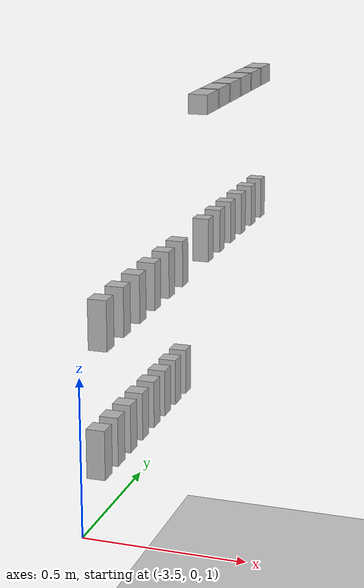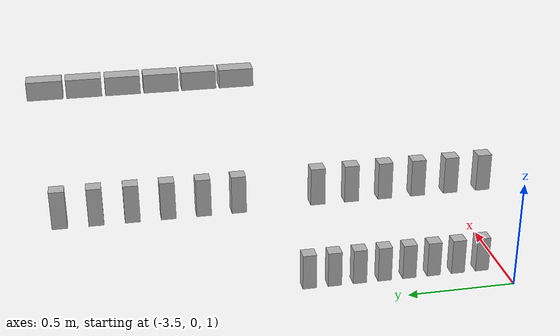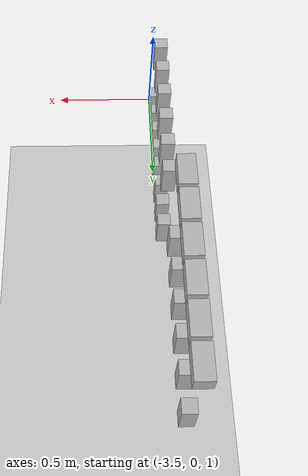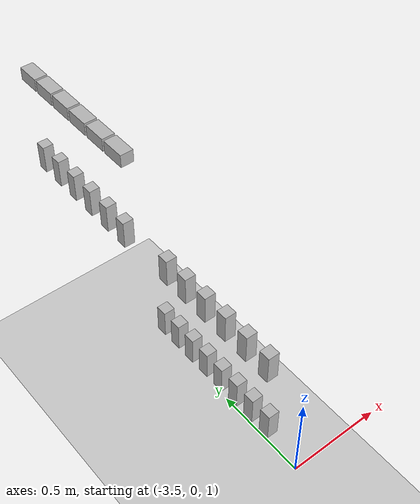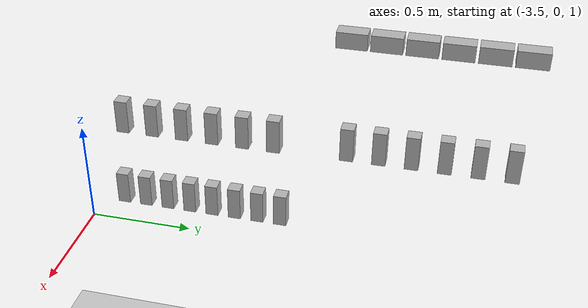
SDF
<sdf version="1.7">
 <world name="default">
  <model name="ground_plane">
   <static>1</static>
   <link name="link">
    <collision name="collision">
     <geometry><plane><normal>0 0 1</normal><size>100 100</size></plane></geometry>
     <surface>
      <contact><collide_bitmask>65535</collide_bitmask></contact>
      <friction><ode><mu>100</mu><mu2>50</mu2></ode></friction>
     </surface>
    </collision>
    <visual name="visual">
     <cast_shadows>0</cast_shadows>
     <geometry><plane><normal>0 0 1</normal><size>100 100</size></plane></geometry>
     <material>
      <script><uri>file://media/materials/scripts/gazebo.material</uri><name>Gazebo/Grey</name></script>
     </material>
    </visual>
   </link>
  </model>
  <model name="AH_shelf_filled_0">
   <static>1</static>
   <model name="board4">
    <pose>0 0.5 1.2 0 -0 0</pose>
    <static>0</static>
    <link name="AH_hagelslag_puur::link_0">
     <inertial>
      <mass>0.1</mass>
      <inertia><ixx>0.0014</ixx><ixy>0</ixy><ixz>0</ixz><iyy>0.0014</iyy><iyz>0</iyz><izz>0.0028</izz></inertia>
     </inertial>
     <pose>0.111111 0 0 0 -0 1.57</pose>
     <visual name="visual">
      <geometry>
       <mesh><uri>model://AH_hagelslag_puur/AH_hagelslag_puur/AH_hagelslag_puur.dae</uri><scale>1 1 1</scale></mesh>
      </geometry>
     </visual>
     <collision name="collision">
      <geometry>
       <mesh><uri>model://AH_hagelslag_puur/AH_hagelslag_puur/AH_hagelslag_puur.dae</uri><scale>1 1 1</scale></mesh>
      </geometry>
      <surface>
       <friction>
        <ode><mu>1</mu><mu2>1</mu2><fdir1>0 0 0</fdir1><slip1>0</slip1><slip2>0</slip2></ode>
        <torsional>
         <coefficient>1</coefficient>
         <patch_radius>0</patch_radius>
         <surface_radius>0</surface_radius>
         <use_patch_radius>1</use_patch_radius>
         <ode><slip>0</slip></ode>
        </torsional>
       </friction>
       <bounce><restitution_coefficient>0</restitution_coefficient><threshold>1e+06</threshold></bounce>
       <contact>
        <collide_without_contact>0</collide_without_contact>
        <collide_without_contact_bitmask>1</collide_without_contact_bitmask>
        <collide_bitmask>1</collide_bitmask>
        <ode>
         <soft_cfm>0</soft_cfm>
         <soft_erp>0.2</soft_erp>
         <kp>1e+13</kp>
         <kd>1</kd>
         <max_vel>0.01</max_vel>
         <min_depth>0</min_depth>
        </ode>
        <bullet>
         <split_impulse>1</split_impulse>
         <split_impulse_penetration_threshold>-0.01</split_impulse_penetration_threshold>
         <soft_cfm>0</soft_cfm>
         <soft_erp>0.2</soft_erp>
         <kp>1e+13</kp>
         <kd>1</kd>
        </bullet>
       </contact>
      </surface>
     </collision>
    </link>
    <static>0</static>
    <link name="AH_hagelslag_puur::link_0">
     <inertial>
      <mass>0.1</mass>
      <inertia><ixx>0.0014</ixx><ixy>0</ixy><ixz>0</ixz><iyy>0.0014</iyy><iyz>0</iyz><izz>0.0028</izz></inertia>
     </inertial>
     <pose>0.222222 0 0 0 -0 1.57</pose>
     <visual name="visual">
      <geometry>
       <mesh><uri>model://AH_hagelslag_puur/AH_hagelslag_puur/AH_hagelslag_puur.dae</uri><scale>1 1 1</scale></mesh>
      </geometry>
     </visual>
     <collision name="collision">
      <geometry>
       <mesh><uri>model://AH_hagelslag_puur/AH_hagelslag_puur/AH_hagelslag_puur.dae</uri><scale>1 1 1</scale></mesh>
      </geometry>
      <surface>
       <friction>
        <ode><mu>1</mu><mu2>1</mu2><fdir1>0 0 0</fdir1><slip1>0</slip1><slip2>0</slip2></ode>
        <torsional>
         <coefficient>1</coefficient>
         <patch_radius>0</patch_radius>
         <surface_radius>0</surface_radius>
         <use_patch_radius>1</use_patch_radius>
         <ode><slip>0</slip></ode>
        </torsional>
       </friction>
       <bounce><restitution_coefficient>0</restitution_coefficient><threshold>1e+06</threshold></bounce>
       <contact>
        <collide_without_contact>0</collide_without_contact>
        <collide_without_contact_bitmask>1</collide_without_contact_bitmask>
        <collide_bitmask>1</collide_bitmask>
        <ode>
         <soft_cfm>0</soft_cfm>
         <soft_erp>0.2</soft_erp>
         <kp>1e+13</kp>
         <kd>1</kd>
         <max_vel>0.01</max_vel>
         <min_depth>0</min_depth>
        </ode>
        <bullet>
         <split_impulse>1</split_impulse>
         <split_impulse_penetration_threshold>-0.01</split_impulse_penetration_threshold>
         <soft_cfm>0</soft_cfm>
         <soft_erp>0.2</soft_erp>
         <kp>1e+13</kp>
         <kd>1</kd>
        </bullet>
       </contact>
      </surface>
     </collision>
    </link>
    <static>0</static>
    <link name="AH_hagelslag_puur::link_0">
     <inertial>
      <mass>0.1</mass>
      <inertia><ixx>0.0014</ixx><ixy>0</ixy><ixz>0</ixz><iyy>0.0014</iyy><iyz>0</iyz><izz>0.0028</izz></inertia>
     </inertial>
     <pose>0.333333 0 0 0 -0 1.57</pose>
     <visual name="visual">
      <geometry>
       <mesh><uri>model://AH_hagelslag_puur/AH_hagelslag_puur/AH_hagelslag_puur.dae</uri><scale>1 1 1</scale></mesh>
      </geometry>
     </visual>
     <collision name="collision">
      <geometry>
       <mesh><uri>model://AH_hagelslag_puur/AH_hagelslag_puur/AH_hagelslag_puur.dae</uri><scale>1 1 1</scale></mesh>
      </geometry>
      <surface>
       <friction>
        <ode><mu>1</mu><mu2>1</mu2><fdir1>0 0 0</fdir1><slip1>0</slip1><slip2>0</slip2></ode>
        <torsional>
         <coefficient>1</coefficient>
         <patch_radius>0</patch_radius>
         <surface_radius>0</surface_radius>
         <use_patch_radius>1</use_patch_radius>
         <ode><slip>0</slip></ode>
        </torsional>
       </friction>
       <bounce><restitution_coefficient>0</restitution_coefficient><threshold>1e+06</threshold></bounce>
       <contact>
        <collide_without_contact>0</collide_without_contact>
        <collide_without_contact_bitmask>1</collide_without_contact_bitmask>
        <collide_bitmask>1</collide_bitmask>
        <ode>
         <soft_cfm>0</soft_cfm>
         <soft_erp>0.2</soft_erp>
         <kp>1e+13</kp>
         <kd>1</kd>
         <max_vel>0.01</max_vel>
         <min_depth>0</min_depth>
        </ode>
        <bullet>
         <split_impulse>1</split_impulse>
         <split_impulse_penetration_threshold>-0.01</split_impulse_penetration_threshold>
         <soft_cfm>0</soft_cfm>
         <soft_erp>0.2</soft_erp>
         <kp>1e+13</kp>
         <kd>1</kd>
        </bullet>
       </contact>
      </surface>
     </collision>
    </link>
    <static>0</static>
    <link name="AH_hagelslag_puur::link_0">
     <inertial>
      <mass>0.1</mass>
      <inertia><ixx>0.0014</ixx><ixy>0</ixy><ixz>0</ixz><iyy>0.0014</iyy><iyz>0</iyz><izz>0.0028</izz></inertia>
     </inertial>
     <pose>0.444444 0 0 0 -0 1.57</pose>
     <visual name="visual">
      <geometry>
       <mesh><uri>model://AH_hagelslag_puur/AH_hagelslag_puur/AH_hagelslag_puur.dae</uri><scale>1 1 1</scale></mesh>
      </geometry>
     </visual>
     <collision name="collision">
      <geometry>
       <mesh><uri>model://AH_hagelslag_puur/AH_hagelslag_puur/AH_hagelslag_puur.dae</uri><scale>1 1 1</scale></mesh>
      </geometry>
      <surface>
       <friction>
        <ode><mu>1</mu><mu2>1</mu2><fdir1>0 0 0</fdir1><slip1>0</slip1><slip2>0</slip2></ode>
        <torsional>
         <coefficient>1</coefficient>
         <patch_radius>0</patch_radius>
         <surface_radius>0</surface_radius>
         <use_patch_radius>1</use_patch_radius>
         <ode><slip>0</slip></ode>
        </torsional>
       </friction>
       <bounce><restitution_coefficient>0</restitution_coefficient><threshold>1e+06</threshold></bounce>
       <contact>
        <collide_without_contact>0</collide_without_contact>
        <collide_without_contact_bitmask>1</collide_without_contact_bitmask>
        <collide_bitmask>1</collide_bitmask>
        <ode>
         <soft_cfm>0</soft_cfm>
         <soft_erp>0.2</soft_erp>
         <kp>1e+13</kp>
         <kd>1</kd>
         <max_vel>0.01</max_vel>
         <min_depth>0</min_depth>
        </ode>
        <bullet>
         <split_impulse>1</split_impulse>
         <split_impulse_penetration_threshold>-0.01</split_impulse_penetration_threshold>
         <soft_cfm>0</soft_cfm>
         <soft_erp>0.2</soft_erp>
         <kp>1e+13</kp>
         <kd>1</kd>
        </bullet>
       </contact>
      </surface>
     </collision>
    </link>
    <static>0</static>
    <link name="AH_hagelslag_puur::link_0">
     <inertial>
      <mass>0.1</mass>
      <inertia><ixx>0.0014</ixx><ixy>0</ixy><ixz>0</ixz><iyy>0.0014</iyy><iyz>0</iyz><izz>0.0028</izz></inertia>
     </inertial>
     <pose>0.555556 0 0 0 -0 1.57</pose>
     <visual name="visual">
      <geometry>
       <mesh><uri>model://AH_hagelslag_puur/AH_hagelslag_puur/AH_hagelslag_puur.dae</uri><scale>1 1 1</scale></mesh>
      </geometry>
     </visual>
     <collision name="collision">
      <geometry>
       <mesh><uri>model://AH_hagelslag_puur/AH_hagelslag_puur/AH_hagelslag_puur.dae</uri><scale>1 1 1</scale></mesh>
      </geometry>
      <surface>
       <friction>
        <ode><mu>1</mu><mu2>1</mu2><fdir1>0 0 0</fdir1><slip1>0</slip1><slip2>0</slip2></ode>
        <torsional>
         <coefficient>1</coefficient>
         <patch_radius>0</patch_radius>
         <surface_radius>0</surface_radius>
         <use_patch_radius>1</use_patch_radius>
         <ode><slip>0</slip></ode>
        </torsional>
       </friction>
       <bounce><restitution_coefficient>0</restitution_coefficient><threshold>1e+06</threshold></bounce>
       <contact>
        <collide_without_contact>0</collide_without_contact>
        <collide_without_contact_bitmask>1</collide_without_contact_bitmask>
        <collide_bitmask>1</collide_bitmask>
        <ode>
         <soft_cfm>0</soft_cfm>
         <soft_erp>0.2</soft_erp>
         <kp>1e+13</kp>
         <kd>1</kd>
         <max_vel>0.01</max_vel>
         <min_depth>0</min_depth>
        </ode>
        <bullet>
         <split_impulse>1</split_impulse>
         <split_impulse_penetration_threshold>-0.01</split_impulse_penetration_threshold>
         <soft_cfm>0</soft_cfm>
         <soft_erp>0.2</soft_erp>
         <kp>1e+13</kp>
         <kd>1</kd>
        </bullet>
       </contact>
      </surface>
     </collision>
    </link>
    <static>0</static>
    <link name="AH_hagelslag_puur::link_0">
     <inertial>
      <mass>0.1</mass>
      <inertia><ixx>0.0014</ixx><ixy>0</ixy><ixz>0</ixz><iyy>0.0014</iyy><iyz>0</iyz><izz>0.0028</izz></inertia>
     </inertial>
     <pose>0.666667 0 0 0 -0 1.57</pose>
     <visual name="visual">
      <geometry>
       <mesh><uri>model://AH_hagelslag_puur/AH_hagelslag_puur/AH_hagelslag_puur.dae</uri><scale>1 1 1</scale></mesh>
      </geometry>
     </visual>
     <collision name="collision">
      <geometry>
       <mesh><uri>model://AH_hagelslag_puur/AH_hagelslag_puur/AH_hagelslag_puur.dae</uri><scale>1 1 1</scale></mesh>
      </geometry>
      <surface>
       <friction>
        <ode><mu>1</mu><mu2>1</mu2><fdir1>0 0 0</fdir1><slip1>0</slip1><slip2>0</slip2></ode>
        <torsional>
         <coefficient>1</coefficient>
         <patch_radius>0</patch_radius>
         <surface_radius>0</surface_radius>
         <use_patch_radius>1</use_patch_radius>
         <ode><slip>0</slip></ode>
        </torsional>
       </friction>
       <bounce><restitution_coefficient>0</restitution_coefficient><threshold>1e+06</threshold></bounce>
       <contact>
        <collide_without_contact>0</collide_without_contact>
        <collide_without_contact_bitmask>1</collide_without_contact_bitmask>
        <collide_bitmask>1</collide_bitmask>
        <ode>
         <soft_cfm>0</soft_cfm>
         <soft_erp>0.2</soft_erp>
         <kp>1e+13</kp>
         <kd>1</kd>
         <max_vel>0.01</max_vel>
         <min_depth>0</min_depth>
        </ode>
        <bullet>
         <split_impulse>1</split_impulse>
         <split_impulse_penetration_threshold>-0.01</split_impulse_penetration_threshold>
         <soft_cfm>0</soft_cfm>
         <soft_erp>0.2</soft_erp>
         <kp>1e+13</kp>
         <kd>1</kd>
        </bullet>
       </contact>
      </surface>
     </collision>
    </link>
    <static>0</static>
    <link name="AH_hagelslag_puur::link_0">
     <inertial>
      <mass>0.1</mass>
      <inertia><ixx>0.0014</ixx><ixy>0</ixy><ixz>0</ixz><iyy>0.0014</iyy><iyz>0</iyz><izz>0.0028</izz></inertia>
     </inertial>
     <pose>0.777778 0 0 0 -0 1.57</pose>
     <visual name="visual">
      <geometry>
       <mesh><uri>model://AH_hagelslag_puur/AH_hagelslag_puur/AH_hagelslag_puur.dae</uri><scale>1 1 1</scale></mesh>
      </geometry>
     </visual>
     <collision name="collision">
      <geometry>
       <mesh><uri>model://AH_hagelslag_puur/AH_hagelslag_puur/AH_hagelslag_puur.dae</uri><scale>1 1 1</scale></mesh>
      </geometry>
      <surface>
       <friction>
        <ode><mu>1</mu><mu2>1</mu2><fdir1>0 0 0</fdir1><slip1>0</slip1><slip2>0</slip2></ode>
        <torsional>
         <coefficient>1</coefficient>
         <patch_radius>0</patch_radius>
         <surface_radius>0</surface_radius>
         <use_patch_radius>1</use_patch_radius>
         <ode><slip>0</slip></ode>
        </torsional>
       </friction>
       <bounce><restitution_coefficient>0</restitution_coefficient><threshold>1e+06</threshold></bounce>
       <contact>
        <collide_without_contact>0</collide_without_contact>
        <collide_without_contact_bitmask>1</collide_without_contact_bitmask>
        <collide_bitmask>1</collide_bitmask>
        <ode>
         <soft_cfm>0</soft_cfm>
         <soft_erp>0.2</soft_erp>
         <kp>1e+13</kp>
         <kd>1</kd>
         <max_vel>0.01</max_vel>
         <min_depth>0</min_depth>
        </ode>
        <bullet>
         <split_impulse>1</split_impulse>
         <split_impulse_penetration_threshold>-0.01</split_impulse_penetration_threshold>
         <soft_cfm>0</soft_cfm>
         <soft_erp>0.2</soft_erp>
         <kp>1e+13</kp>
         <kd>1</kd>
        </bullet>
       </contact>
      </surface>
     </collision>
    </link>
    <static>0</static>
    <link name="AH_hagelslag_puur::link_0">
     <inertial>
      <mass>0.1</mass>
      <inertia><ixx>0.0014</ixx><ixy>0</ixy><ixz>0</ixz><iyy>0.0014</iyy><iyz>0</iyz><izz>0.0028</izz></inertia>
     </inertial>
     <pose>0.888889 0 0 0 -0 1.57</pose>
     <visual name="visual">
      <geometry>
       <mesh><uri>model://AH_hagelslag_puur/AH_hagelslag_puur/AH_hagelslag_puur.dae</uri><scale>1 1 1</scale></mesh>
      </geometry>
     </visual>
     <collision name="collision">
      <geometry>
       <mesh><uri>model://AH_hagelslag_puur/AH_hagelslag_puur/AH_hagelslag_puur.dae</uri><scale>1 1 1</scale></mesh>
      </geometry>
      <surface>
       <friction>
        <ode><mu>1</mu><mu2>1</mu2><fdir1>0 0 0</fdir1><slip1>0</slip1><slip2>0</slip2></ode>
        <torsional>
         <coefficient>1</coefficient>
         <patch_radius>0</patch_radius>
         <surface_radius>0</surface_radius>
         <use_patch_radius>1</use_patch_radius>
         <ode><slip>0</slip></ode>
        </torsional>
       </friction>
       <bounce><restitution_coefficient>0</restitution_coefficient><threshold>1e+06</threshold></bounce>
       <contact>
        <collide_without_contact>0</collide_without_contact>
        <collide_without_contact_bitmask>1</collide_without_contact_bitmask>
        <collide_bitmask>1</collide_bitmask>
        <ode>
         <soft_cfm>0</soft_cfm>
         <soft_erp>0.2</soft_erp>
         <kp>1e+13</kp>
         <kd>1</kd>
         <max_vel>0.01</max_vel>
         <min_depth>0</min_depth>
        </ode>
        <bullet>
         <split_impulse>1</split_impulse>
         <split_impulse_penetration_threshold>-0.01</split_impulse_penetration_threshold>
         <soft_cfm>0</soft_cfm>
         <soft_erp>0.2</soft_erp>
         <kp>1e+13</kp>
         <kd>1</kd>
        </bullet>
       </contact>
      </surface>
     </collision>
    </link>
   </model>
   <model name="board5">
    <pose>0 0.5 1.6 0 -0 0</pose>
    <static>0</static>
    <link name="AH_hagelslag_melk::link_0">
     <inertial>
      <mass>0.1</mass>
      <inertia><ixx>0.0014</ixx><ixy>0</ixy><ixz>0</ixz><iyy>0.0014</iyy><iyz>0</iyz><izz>0.0028</izz></inertia>
     </inertial>
     <pose>0.142857 0 0 0 -0 1.57</pose>
     <visual name="visual">
      <geometry>
       <mesh><uri>model://AH_hagelslag_melk/AH_hagelslag_melk/AH_hagelslag_melk.dae</uri><scale>1 1 1</scale></mesh>
      </geometry>
     </visual>
     <collision name="collision">
      <geometry>
       <mesh><uri>model://AH_hagelslag_melk/AH_hagelslag_melk/AH_hagelslag_melk.dae</uri><scale>1 1 1</scale></mesh>
      </geometry>
      <surface>
       <friction>
        <ode><mu>1</mu><mu2>1</mu2><fdir1>0 0 0</fdir1><slip1>0</slip1><slip2>0</slip2></ode>
        <torsional>
         <coefficient>1</coefficient>
         <patch_radius>0</patch_radius>
         <surface_radius>0</surface_radius>
         <use_patch_radius>1</use_patch_radius>
         <ode><slip>0</slip></ode>
        </torsional>
       </friction>
       <bounce><restitution_coefficient>0</restitution_coefficient><threshold>1e+06</threshold></bounce>
       <contact>
        <collide_without_contact>0</collide_without_contact>
        <collide_without_contact_bitmask>1</collide_without_contact_bitmask>
        <collide_bitmask>1</collide_bitmask>
        <ode>
         <soft_cfm>0</soft_cfm>
         <soft_erp>0.2</soft_erp>
         <kp>1e+13</kp>
         <kd>1</kd>
         <max_vel>0.01</max_vel>
         <min_depth>0</min_depth>
        </ode>
        <bullet>
         <split_impulse>1</split_impulse>
         <split_impulse_penetration_threshold>-0.01</split_impulse_penetration_threshold>
         <soft_cfm>0</soft_cfm>
         <soft_erp>0.2</soft_erp>
         <kp>1e+13</kp>
         <kd>1</kd>
        </bullet>
       </contact>
      </surface>
     </collision>
    </link>
    <static>0</static>
    <link name="AH_hagelslag_melk::link_0">
     <inertial>
      <mass>0.1</mass>
      <inertia><ixx>0.0014</ixx><ixy>0</ixy><ixz>0</ixz><iyy>0.0014</iyy><iyz>0</iyz><izz>0.0028</izz></inertia>
     </inertial>
     <pose>0.285714 0 0 0 -0 1.57</pose>
     <visual name="visual">
      <geometry>
       <mesh><uri>model://AH_hagelslag_melk/AH_hagelslag_melk/AH_hagelslag_melk.dae</uri><scale>1 1 1</scale></mesh>
      </geometry>
     </visual>
     <collision name="collision">
      <geometry>
       <mesh><uri>model://AH_hagelslag_melk/AH_hagelslag_melk/AH_hagelslag_melk.dae</uri><scale>1 1 1</scale></mesh>
      </geometry>
      <surface>
       <friction>
        <ode><mu>1</mu><mu2>1</mu2><fdir1>0 0 0</fdir1><slip1>0</slip1><slip2>0</slip2></ode>
        <torsional>
         <coefficient>1</coefficient>
         <patch_radius>0</patch_radius>
         <surface_radius>0</surface_radius>
         <use_patch_radius>1</use_patch_radius>
         <ode><slip>0</slip></ode>
        </torsional>
       </friction>
       <bounce><restitution_coefficient>0</restitution_coefficient><threshold>1e+06</threshold></bounce>
       <contact>
        <collide_without_contact>0</collide_without_contact>
        <collide_without_contact_bitmask>1</collide_without_contact_bitmask>
        <collide_bitmask>1</collide_bitmask>
        <ode>
         <soft_cfm>0</soft_cfm>
         <soft_erp>0.2</soft_erp>
         <kp>1e+13</kp>
         <kd>1</kd>
         <max_vel>0.01</max_vel>
         <min_depth>0</min_depth>
        </ode>
        <bullet>
         <split_impulse>1</split_impulse>
         <split_impulse_penetration_threshold>-0.01</split_impulse_penetration_threshold>
         <soft_cfm>0</soft_cfm>
         <soft_erp>0.2</soft_erp>
         <kp>1e+13</kp>
         <kd>1</kd>
        </bullet>
       </contact>
      </surface>
     </collision>
    </link>
    <static>0</static>
    <link name="AH_hagelslag_melk::link_0">
     <inertial>
      <mass>0.1</mass>
      <inertia><ixx>0.0014</ixx><ixy>0</ixy><ixz>0</ixz><iyy>0.0014</iyy><iyz>0</iyz><izz>0.0028</izz></inertia>
     </inertial>
     <pose>0.428571 0 0 0 -0 1.57</pose>
     <visual name="visual">
      <geometry>
       <mesh><uri>model://AH_hagelslag_melk/AH_hagelslag_melk/AH_hagelslag_melk.dae</uri><scale>1 1 1</scale></mesh>
      </geometry>
     </visual>
     <collision name="collision">
      <geometry>
       <mesh><uri>model://AH_hagelslag_melk/AH_hagelslag_melk/AH_hagelslag_melk.dae</uri><scale>1 1 1</scale></mesh>
      </geometry>
      <surface>
       <friction>
        <ode><mu>1</mu><mu2>1</mu2><fdir1>0 0 0</fdir1><slip1>0</slip1><slip2>0</slip2></ode>
        <torsional>
         <coefficient>1</coefficient>
         <patch_radius>0</patch_radius>
         <surface_radius>0</surface_radius>
         <use_patch_radius>1</use_patch_radius>
         <ode><slip>0</slip></ode>
        </torsional>
       </friction>
       <bounce><restitution_coefficient>0</restitution_coefficient><threshold>1e+06</threshold></bounce>
       <contact>
        <collide_without_contact>0</collide_without_contact>
        <collide_without_contact_bitmask>1</collide_without_contact_bitmask>
        <collide_bitmask>1</collide_bitmask>
        <ode>
         <soft_cfm>0</soft_cfm>
         <soft_erp>0.2</soft_erp>
         <kp>1e+13</kp>
         <kd>1</kd>
         <max_vel>0.01</max_vel>
         <min_depth>0</min_depth>
        </ode>
        <bullet>
         <split_impulse>1</split_impulse>
         <split_impulse_penetration_threshold>-0.01</split_impulse_penetration_threshold>
         <soft_cfm>0</soft_cfm>
         <soft_erp>0.2</soft_erp>
         <kp>1e+13</kp>
         <kd>1</kd>
        </bullet>
       </contact>
      </surface>
     </collision>
    </link>
    <static>0</static>
    <link name="AH_hagelslag_melk::link_0">
     <inertial>
      <mass>0.1</mass>
      <inertia><ixx>0.0014</ixx><ixy>0</ixy><ixz>0</ixz><iyy>0.0014</iyy><iyz>0</iyz><izz>0.0028</izz></inertia>
     </inertial>
     <pose>0.571429 0 0 0 -0 1.57</pose>
     <visual name="visual">
      <geometry>
       <mesh><uri>model://AH_hagelslag_melk/AH_hagelslag_melk/AH_hagelslag_melk.dae</uri><scale>1 1 1</scale></mesh>
      </geometry>
     </visual>
     <collision name="collision">
      <geometry>
       <mesh><uri>model://AH_hagelslag_melk/AH_hagelslag_melk/AH_hagelslag_melk.dae</uri><scale>1 1 1</scale></mesh>
      </geometry>
      <surface>
       <friction>
        <ode><mu>1</mu><mu2>1</mu2><fdir1>0 0 0</fdir1><slip1>0</slip1><slip2>0</slip2></ode>
        <torsional>
         <coefficient>1</coefficient>
         <patch_radius>0</patch_radius>
         <surface_radius>0</surface_radius>
         <use_patch_radius>1</use_patch_radius>
         <ode><slip>0</slip></ode>
        </torsional>
       </friction>
       <bounce><restitution_coefficient>0</restitution_coefficient><threshold>1e+06</threshold></bounce>
       <contact>
        <collide_without_contact>0</collide_without_contact>
        <collide_without_contact_bitmask>1</collide_without_contact_bitmask>
        <collide_bitmask>1</collide_bitmask>
        <ode>
         <soft_cfm>0</soft_cfm>
         <soft_erp>0.2</soft_erp>
         <kp>1e+13</kp>
         <kd>1</kd>
         <max_vel>0.01</max_vel>
         <min_depth>0</min_depth>
        </ode>
        <bullet>
         <split_impulse>1</split_impulse>
         <split_impulse_penetration_threshold>-0.01</split_impulse_penetration_threshold>
         <soft_cfm>0</soft_cfm>
         <soft_erp>0.2</soft_erp>
         <kp>1e+13</kp>
         <kd>1</kd>
        </bullet>
       </contact>
      </surface>
     </collision>
    </link>
    <static>0</static>
    <link name="AH_hagelslag_melk::link_0">
     <inertial>
      <mass>0.1</mass>
      <inertia><ixx>0.0014</ixx><ixy>0</ixy><ixz>0</ixz><iyy>0.0014</iyy><iyz>0</iyz><izz>0.0028</izz></inertia>
     </inertial>
     <pose>0.714286 0 0 0 -0 1.57</pose>
     <visual name="visual">
      <geometry>
       <mesh><uri>model://AH_hagelslag_melk/AH_hagelslag_melk/AH_hagelslag_melk.dae</uri><scale>1 1 1</scale></mesh>
      </geometry>
     </visual>
     <collision name="collision">
      <geometry>
       <mesh><uri>model://AH_hagelslag_melk/AH_hagelslag_melk/AH_hagelslag_melk.dae</uri><scale>1 1 1</scale></mesh>
      </geometry>
      <surface>
       <friction>
        <ode><mu>1</mu><mu2>1</mu2><fdir1>0 0 0</fdir1><slip1>0</slip1><slip2>0</slip2></ode>
        <torsional>
         <coefficient>1</coefficient>
         <patch_radius>0</patch_radius>
         <surface_radius>0</surface_radius>
         <use_patch_radius>1</use_patch_radius>
         <ode><slip>0</slip></ode>
        </torsional>
       </friction>
       <bounce><restitution_coefficient>0</restitution_coefficient><threshold>1e+06</threshold></bounce>
       <contact>
        <collide_without_contact>0</collide_without_contact>
        <collide_without_contact_bitmask>1</collide_without_contact_bitmask>
        <collide_bitmask>1</collide_bitmask>
        <ode>
         <soft_cfm>0</soft_cfm>
         <soft_erp>0.2</soft_erp>
         <kp>1e+13</kp>
         <kd>1</kd>
         <max_vel>0.01</max_vel>
         <min_depth>0</min_depth>
        </ode>
        <bullet>
         <split_impulse>1</split_impulse>
         <split_impulse_penetration_threshold>-0.01</split_impulse_penetration_threshold>
         <soft_cfm>0</soft_cfm>
         <soft_erp>0.2</soft_erp>
         <kp>1e+13</kp>
         <kd>1</kd>
        </bullet>
       </contact>
      </surface>
     </collision>
    </link>
    <static>0</static>
    <link name="AH_hagelslag_melk::link_0">
     <inertial>
      <mass>0.1</mass>
      <inertia><ixx>0.0014</ixx><ixy>0</ixy><ixz>0</ixz><iyy>0.0014</iyy><iyz>0</iyz><izz>0.0028</izz></inertia>
     </inertial>
     <pose>0.857143 0 0 0 -0 1.57</pose>
     <visual name="visual">
      <geometry>
       <mesh><uri>model://AH_hagelslag_melk/AH_hagelslag_melk/AH_hagelslag_melk.dae</uri><scale>1 1 1</scale></mesh>
      </geometry>
     </visual>
     <collision name="collision">
      <geometry>
       <mesh><uri>model://AH_hagelslag_melk/AH_hagelslag_melk/AH_hagelslag_melk.dae</uri><scale>1 1 1</scale></mesh>
      </geometry>
      <surface>
       <friction>
        <ode><mu>1</mu><mu2>1</mu2><fdir1>0 0 0</fdir1><slip1>0</slip1><slip2>0</slip2></ode>
        <torsional>
         <coefficient>1</coefficient>
         <patch_radius>0</patch_radius>
         <surface_radius>0</surface_radius>
         <use_patch_radius>1</use_patch_radius>
         <ode><slip>0</slip></ode>
        </torsional>
       </friction>
       <bounce><restitution_coefficient>0</restitution_coefficient><threshold>1e+06</threshold></bounce>
       <contact>
        <collide_without_contact>0</collide_without_contact>
        <collide_without_contact_bitmask>1</collide_without_contact_bitmask>
        <collide_bitmask>1</collide_bitmask>
        <ode>
         <soft_cfm>0</soft_cfm>
         <soft_erp>0.2</soft_erp>
         <kp>1e+13</kp>
         <kd>1</kd>
         <max_vel>0.01</max_vel>
         <min_depth>0</min_depth>
        </ode>
        <bullet>
         <split_impulse>1</split_impulse>
         <split_impulse_penetration_threshold>-0.01</split_impulse_penetration_threshold>
         <soft_cfm>0</soft_cfm>
         <soft_erp>0.2</soft_erp>
         <kp>1e+13</kp>
         <kd>1</kd>
        </bullet>
       </contact>
      </surface>
     </collision>
    </link>
   </model>
   <pose>-4.01662 1.07063 0 0 0 -1.5708</pose>
  </model>
  <model name="AH_shelf_filled_1">
   <static>1</static>
   <model name="board5">
    <pose>0 0.5 1.6 0 -0 0</pose>
    <static>0</static>
    <link name="AH_hagelslag_melk::link_0">
     <inertial>
      <mass>0.1</mass>
      <inertia><ixx>0.0014</ixx><ixy>0</ixy><ixz>0</ixz><iyy>0.0014</iyy><iyz>0</iyz><izz>0.0028</izz></inertia>
     </inertial>
     <pose>0.142857 0 0 0 -0 1.57</pose>
     <visual name="visual">
      <geometry>
       <mesh><uri>model://AH_hagelslag_melk/AH_hagelslag_melk/AH_hagelslag_melk.dae</uri><scale>1 1 1</scale></mesh>
      </geometry>
     </visual>
     <collision name="collision">
      <geometry>
       <mesh><uri>model://AH_hagelslag_melk/AH_hagelslag_melk/AH_hagelslag_melk.dae</uri><scale>1 1 1</scale></mesh>
      </geometry>
      <surface>
       <friction>
        <ode><mu>1</mu><mu2>1</mu2><fdir1>0 0 0</fdir1><slip1>0</slip1><slip2>0</slip2></ode>
        <torsional>
         <coefficient>1</coefficient>
         <patch_radius>0</patch_radius>
         <surface_radius>0</surface_radius>
         <use_patch_radius>1</use_patch_radius>
         <ode><slip>0</slip></ode>
        </torsional>
       </friction>
       <bounce><restitution_coefficient>0</restitution_coefficient><threshold>1e+06</threshold></bounce>
       <contact>
        <collide_without_contact>0</collide_without_contact>
        <collide_without_contact_bitmask>1</collide_without_contact_bitmask>
        <collide_bitmask>1</collide_bitmask>
        <ode>
         <soft_cfm>0</soft_cfm>
         <soft_erp>0.2</soft_erp>
         <kp>1e+13</kp>
         <kd>1</kd>
         <max_vel>0.01</max_vel>
         <min_depth>0</min_depth>
        </ode>
        <bullet>
         <split_impulse>1</split_impulse>
         <split_impulse_penetration_threshold>-0.01</split_impulse_penetration_threshold>
         <soft_cfm>0</soft_cfm>
         <soft_erp>0.2</soft_erp>
         <kp>1e+13</kp>
         <kd>1</kd>
        </bullet>
       </contact>
      </surface>
     </collision>
    </link>
    <static>0</static>
    <link name="AH_hagelslag_melk::link_0">
     <inertial>
      <mass>0.1</mass>
      <inertia><ixx>0.0014</ixx><ixy>0</ixy><ixz>0</ixz><iyy>0.0014</iyy><iyz>0</iyz><izz>0.0028</izz></inertia>
     </inertial>
     <pose>0.285714 0 0 0 -0 1.57</pose>
     <visual name="visual">
      <geometry>
       <mesh><uri>model://AH_hagelslag_melk/AH_hagelslag_melk/AH_hagelslag_melk.dae</uri><scale>1 1 1</scale></mesh>
      </geometry>
     </visual>
     <collision name="collision">
      <geometry>
       <mesh><uri>model://AH_hagelslag_melk/AH_hagelslag_melk/AH_hagelslag_melk.dae</uri><scale>1 1 1</scale></mesh>
      </geometry>
      <surface>
       <friction>
        <ode><mu>1</mu><mu2>1</mu2><fdir1>0 0 0</fdir1><slip1>0</slip1><slip2>0</slip2></ode>
        <torsional>
         <coefficient>1</coefficient>
         <patch_radius>0</patch_radius>
         <surface_radius>0</surface_radius>
         <use_patch_radius>1</use_patch_radius>
         <ode><slip>0</slip></ode>
        </torsional>
       </friction>
       <bounce><restitution_coefficient>0</restitution_coefficient><threshold>1e+06</threshold></bounce>
       <contact>
        <collide_without_contact>0</collide_without_contact>
        <collide_without_contact_bitmask>1</collide_without_contact_bitmask>
        <collide_bitmask>1</collide_bitmask>
        <ode>
         <soft_cfm>0</soft_cfm>
         <soft_erp>0.2</soft_erp>
         <kp>1e+13</kp>
         <kd>1</kd>
         <max_vel>0.01</max_vel>
         <min_depth>0</min_depth>
        </ode>
        <bullet>
         <split_impulse>1</split_impulse>
         <split_impulse_penetration_threshold>-0.01</split_impulse_penetration_threshold>
         <soft_cfm>0</soft_cfm>
         <soft_erp>0.2</soft_erp>
         <kp>1e+13</kp>
         <kd>1</kd>
        </bullet>
       </contact>
      </surface>
     </collision>
    </link>
    <static>0</static>
    <link name="AH_hagelslag_melk::link_0">
     <inertial>
      <mass>0.1</mass>
      <inertia><ixx>0.0014</ixx><ixy>0</ixy><ixz>0</ixz><iyy>0.0014</iyy><iyz>0</iyz><izz>0.0028</izz></inertia>
     </inertial>
     <pose>0.428571 0 0 0 -0 1.57</pose>
     <visual name="visual">
      <geometry>
       <mesh><uri>model://AH_hagelslag_melk/AH_hagelslag_melk/AH_hagelslag_melk.dae</uri><scale>1 1 1</scale></mesh>
      </geometry>
     </visual>
     <collision name="collision">
      <geometry>
       <mesh><uri>model://AH_hagelslag_melk/AH_hagelslag_melk/AH_hagelslag_melk.dae</uri><scale>1 1 1</scale></mesh>
      </geometry>
      <surface>
       <friction>
        <ode><mu>1</mu><mu2>1</mu2><fdir1>0 0 0</fdir1><slip1>0</slip1><slip2>0</slip2></ode>
        <torsional>
         <coefficient>1</coefficient>
         <patch_radius>0</patch_radius>
         <surface_radius>0</surface_radius>
         <use_patch_radius>1</use_patch_radius>
         <ode><slip>0</slip></ode>
        </torsional>
       </friction>
       <bounce><restitution_coefficient>0</restitution_coefficient><threshold>1e+06</threshold></bounce>
       <contact>
        <collide_without_contact>0</collide_without_contact>
        <collide_without_contact_bitmask>1</collide_without_contact_bitmask>
        <collide_bitmask>1</collide_bitmask>
        <ode>
         <soft_cfm>0</soft_cfm>
         <soft_erp>0.2</soft_erp>
         <kp>1e+13</kp>
         <kd>1</kd>
         <max_vel>0.01</max_vel>
         <min_depth>0</min_depth>
        </ode>
        <bullet>
         <split_impulse>1</split_impulse>
         <split_impulse_penetration_threshold>-0.01</split_impulse_penetration_threshold>
         <soft_cfm>0</soft_cfm>
         <soft_erp>0.2</soft_erp>
         <kp>1e+13</kp>
         <kd>1</kd>
        </bullet>
       </contact>
      </surface>
     </collision>
    </link>
    <static>0</static>
    <link name="AH_hagelslag_melk::link_0">
     <inertial>
      <mass>0.1</mass>
      <inertia><ixx>0.0014</ixx><ixy>0</ixy><ixz>0</ixz><iyy>0.0014</iyy><iyz>0</iyz><izz>0.0028</izz></inertia>
     </inertial>
     <pose>0.571429 0 0 0 -0 1.57</pose>
     <visual name="visual">
      <geometry>
       <mesh><uri>model://AH_hagelslag_melk/AH_hagelslag_melk/AH_hagelslag_melk.dae</uri><scale>1 1 1</scale></mesh>
      </geometry>
     </visual>
     <collision name="collision">
      <geometry>
       <mesh><uri>model://AH_hagelslag_melk/AH_hagelslag_melk/AH_hagelslag_melk.dae</uri><scale>1 1 1</scale></mesh>
      </geometry>
      <surface>
       <friction>
        <ode><mu>1</mu><mu2>1</mu2><fdir1>0 0 0</fdir1><slip1>0</slip1><slip2>0</slip2></ode>
        <torsional>
         <coefficient>1</coefficient>
         <patch_radius>0</patch_radius>
         <surface_radius>0</surface_radius>
         <use_patch_radius>1</use_patch_radius>
         <ode><slip>0</slip></ode>
        </torsional>
       </friction>
       <bounce><restitution_coefficient>0</restitution_coefficient><threshold>1e+06</threshold></bounce>
       <contact>
        <collide_without_contact>0</collide_without_contact>
        <collide_without_contact_bitmask>1</collide_without_contact_bitmask>
        <collide_bitmask>1</collide_bitmask>
        <ode>
         <soft_cfm>0</soft_cfm>
         <soft_erp>0.2</soft_erp>
         <kp>1e+13</kp>
         <kd>1</kd>
         <max_vel>0.01</max_vel>
         <min_depth>0</min_depth>
        </ode>
        <bullet>
         <split_impulse>1</split_impulse>
         <split_impulse_penetration_threshold>-0.01</split_impulse_penetration_threshold>
         <soft_cfm>0</soft_cfm>
         <soft_erp>0.2</soft_erp>
         <kp>1e+13</kp>
         <kd>1</kd>
        </bullet>
       </contact>
      </surface>
     </collision>
    </link>
    <static>0</static>
    <link name="AH_hagelslag_melk::link_0">
     <inertial>
      <mass>0.1</mass>
      <inertia><ixx>0.0014</ixx><ixy>0</ixy><ixz>0</ixz><iyy>0.0014</iyy><iyz>0</iyz><izz>0.0028</izz></inertia>
     </inertial>
     <pose>0.714286 0 0 0 -0 1.57</pose>
     <visual name="visual">
      <geometry>
       <mesh><uri>model://AH_hagelslag_melk/AH_hagelslag_melk/AH_hagelslag_melk.dae</uri><scale>1 1 1</scale></mesh>
      </geometry>
     </visual>
     <collision name="collision">
      <geometry>
       <mesh><uri>model://AH_hagelslag_melk/AH_hagelslag_melk/AH_hagelslag_melk.dae</uri><scale>1 1 1</scale></mesh>
      </geometry>
      <surface>
       <friction>
        <ode><mu>1</mu><mu2>1</mu2><fdir1>0 0 0</fdir1><slip1>0</slip1><slip2>0</slip2></ode>
        <torsional>
         <coefficient>1</coefficient>
         <patch_radius>0</patch_radius>
         <surface_radius>0</surface_radius>
         <use_patch_radius>1</use_patch_radius>
         <ode><slip>0</slip></ode>
        </torsional>
       </friction>
       <bounce><restitution_coefficient>0</restitution_coefficient><threshold>1e+06</threshold></bounce>
       <contact>
        <collide_without_contact>0</collide_without_contact>
        <collide_without_contact_bitmask>1</collide_without_contact_bitmask>
        <collide_bitmask>1</collide_bitmask>
        <ode>
         <soft_cfm>0</soft_cfm>
         <soft_erp>0.2</soft_erp>
         <kp>1e+13</kp>
         <kd>1</kd>
         <max_vel>0.01</max_vel>
         <min_depth>0</min_depth>
        </ode>
        <bullet>
         <split_impulse>1</split_impulse>
         <split_impulse_penetration_threshold>-0.01</split_impulse_penetration_threshold>
         <soft_cfm>0</soft_cfm>
         <soft_erp>0.2</soft_erp>
         <kp>1e+13</kp>
         <kd>1</kd>
        </bullet>
       </contact>
      </surface>
     </collision>
    </link>
    <static>0</static>
    <link name="AH_hagelslag_melk::link_0">
     <inertial>
      <mass>0.1</mass>
      <inertia><ixx>0.0014</ixx><ixy>0</ixy><ixz>0</ixz><iyy>0.0014</iyy><iyz>0</iyz><izz>0.0028</izz></inertia>
     </inertial>
     <pose>0.857143 0 0 0 -0 1.57</pose>
     <visual name="visual">
      <geometry>
       <mesh><uri>model://AH_hagelslag_melk/AH_hagelslag_melk/AH_hagelslag_melk.dae</uri><scale>1 1 1</scale></mesh>
      </geometry>
     </visual>
     <collision name="collision">
      <geometry>
       <mesh><uri>model://AH_hagelslag_melk/AH_hagelslag_melk/AH_hagelslag_melk.dae</uri><scale>1 1 1</scale></mesh>
      </geometry>
      <surface>
       <friction>
        <ode><mu>1</mu><mu2>1</mu2><fdir1>0 0 0</fdir1><slip1>0</slip1><slip2>0</slip2></ode>
        <torsional>
         <coefficient>1</coefficient>
         <patch_radius>0</patch_radius>
         <surface_radius>0</surface_radius>
         <use_patch_radius>1</use_patch_radius>
         <ode><slip>0</slip></ode>
        </torsional>
       </friction>
       <bounce><restitution_coefficient>0</restitution_coefficient><threshold>1e+06</threshold></bounce>
       <contact>
        <collide_without_contact>0</collide_without_contact>
        <collide_without_contact_bitmask>1</collide_without_contact_bitmask>
        <collide_bitmask>1</collide_bitmask>
        <ode>
         <soft_cfm>0</soft_cfm>
         <soft_erp>0.2</soft_erp>
         <kp>1e+13</kp>
         <kd>1</kd>
         <max_vel>0.01</max_vel>
         <min_depth>0</min_depth>
        </ode>
        <bullet>
         <split_impulse>1</split_impulse>
         <split_impulse_penetration_threshold>-0.01</split_impulse_penetration_threshold>
         <soft_cfm>0</soft_cfm>
         <soft_erp>0.2</soft_erp>
         <kp>1e+13</kp>
         <kd>1</kd>
        </bullet>
       </contact>
      </surface>
     </collision>
    </link>
   </model>
   <model name="board6">
    <pose>0 0.5 2.1 0 -0 0</pose>
    <static>0</static>
    <link name="AH_thee_mango::link_0">
     <inertial>
      <mass>0.1</mass>
      <inertia><ixx>0.0014</ixx><ixy>0</ixy><ixz>0</ixz><iyy>0.0014</iyy><iyz>0</iyz><izz>0.0028</izz></inertia>
     </inertial>
     <pose>0.142857 0 0 0 -0 1.57</pose>
     <visual name="visual">
      <geometry>
       <mesh><uri>model://AH_thee_mango/AH_thee_mango/AH_thee_mango.dae</uri><scale>1 1 1</scale></mesh>
      </geometry>
     </visual>
     <collision name="collision">
      <geometry>
       <mesh><uri>model://AH_thee_mango/AH_thee_mango/AH_thee_mango.dae</uri><scale>1 1 1</scale></mesh>
      </geometry>
      <surface>
       <friction>
        <ode><mu>1</mu><mu2>1</mu2><fdir1>0 0 0</fdir1><slip1>0</slip1><slip2>0</slip2></ode>
        <torsional>
         <coefficient>1</coefficient>
         <patch_radius>0</patch_radius>
         <surface_radius>0</surface_radius>
         <use_patch_radius>1</use_patch_radius>
         <ode><slip>0</slip></ode>
        </torsional>
       </friction>
       <bounce><restitution_coefficient>0</restitution_coefficient><threshold>1e+06</threshold></bounce>
       <contact>
        <collide_without_contact>0</collide_without_contact>
        <collide_without_contact_bitmask>1</collide_without_contact_bitmask>
        <collide_bitmask>1</collide_bitmask>
        <ode>
         <soft_cfm>0</soft_cfm>
         <soft_erp>0.2</soft_erp>
         <kp>1e+13</kp>
         <kd>1</kd>
         <max_vel>0.01</max_vel>
         <min_depth>0</min_depth>
        </ode>
        <bullet>
         <split_impulse>1</split_impulse>
         <split_impulse_penetration_threshold>-0.01</split_impulse_penetration_threshold>
         <soft_cfm>0</soft_cfm>
         <soft_erp>0.2</soft_erp>
         <kp>1e+13</kp>
         <kd>1</kd>
        </bullet>
       </contact>
      </surface>
     </collision>
    </link>
    <static>0</static>
    <link name="AH_thee_mango::link_0">
     <inertial>
      <mass>0.1</mass>
      <inertia><ixx>0.0014</ixx><ixy>0</ixy><ixz>0</ixz><iyy>0.0014</iyy><iyz>0</iyz><izz>0.0028</izz></inertia>
     </inertial>
     <pose>0.285714 0 0 0 -0 1.57</pose>
     <visual name="visual">
      <geometry>
       <mesh><uri>model://AH_thee_mango/AH_thee_mango/AH_thee_mango.dae</uri><scale>1 1 1</scale></mesh>
      </geometry>
     </visual>
     <collision name="collision">
      <geometry>
       <mesh><uri>model://AH_thee_mango/AH_thee_mango/AH_thee_mango.dae</uri><scale>1 1 1</scale></mesh>
      </geometry>
      <surface>
       <friction>
        <ode><mu>1</mu><mu2>1</mu2><fdir1>0 0 0</fdir1><slip1>0</slip1><slip2>0</slip2></ode>
        <torsional>
         <coefficient>1</coefficient>
         <patch_radius>0</patch_radius>
         <surface_radius>0</surface_radius>
         <use_patch_radius>1</use_patch_radius>
         <ode><slip>0</slip></ode>
        </torsional>
       </friction>
       <bounce><restitution_coefficient>0</restitution_coefficient><threshold>1e+06</threshold></bounce>
       <contact>
        <collide_without_contact>0</collide_without_contact>
        <collide_without_contact_bitmask>1</collide_without_contact_bitmask>
        <collide_bitmask>1</collide_bitmask>
        <ode>
         <soft_cfm>0</soft_cfm>
         <soft_erp>0.2</soft_erp>
         <kp>1e+13</kp>
         <kd>1</kd>
         <max_vel>0.01</max_vel>
         <min_depth>0</min_depth>
        </ode>
        <bullet>
         <split_impulse>1</split_impulse>
         <split_impulse_penetration_threshold>-0.01</split_impulse_penetration_threshold>
         <soft_cfm>0</soft_cfm>
         <soft_erp>0.2</soft_erp>
         <kp>1e+13</kp>
         <kd>1</kd>
        </bullet>
       </contact>
      </surface>
     </collision>
    </link>
    <static>0</static>
    <link name="AH_thee_mango::link_0">
     <inertial>
      <mass>0.1</mass>
      <inertia><ixx>0.0014</ixx><ixy>0</ixy><ixz>0</ixz><iyy>0.0014</iyy><iyz>0</iyz><izz>0.0028</izz></inertia>
     </inertial>
     <pose>0.428571 0 0 0 -0 1.57</pose>
     <visual name="visual">
      <geometry>
       <mesh><uri>model://AH_thee_mango/AH_thee_mango/AH_thee_mango.dae</uri><scale>1 1 1</scale></mesh>
      </geometry>
     </visual>
     <collision name="collision">
      <geometry>
       <mesh><uri>model://AH_thee_mango/AH_thee_mango/AH_thee_mango.dae</uri><scale>1 1 1</scale></mesh>
      </geometry>
      <surface>
       <friction>
        <ode><mu>1</mu><mu2>1</mu2><fdir1>0 0 0</fdir1><slip1>0</slip1><slip2>0</slip2></ode>
        <torsional>
         <coefficient>1</coefficient>
         <patch_radius>0</patch_radius>
         <surface_radius>0</surface_radius>
         <use_patch_radius>1</use_patch_radius>
         <ode><slip>0</slip></ode>
        </torsional>
       </friction>
       <bounce><restitution_coefficient>0</restitution_coefficient><threshold>1e+06</threshold></bounce>
       <contact>
        <collide_without_contact>0</collide_without_contact>
        <collide_without_contact_bitmask>1</collide_without_contact_bitmask>
        <collide_bitmask>1</collide_bitmask>
        <ode>
         <soft_cfm>0</soft_cfm>
         <soft_erp>0.2</soft_erp>
         <kp>1e+13</kp>
         <kd>1</kd>
         <max_vel>0.01</max_vel>
         <min_depth>0</min_depth>
        </ode>
        <bullet>
         <split_impulse>1</split_impulse>
         <split_impulse_penetration_threshold>-0.01</split_impulse_penetration_threshold>
         <soft_cfm>0</soft_cfm>
         <soft_erp>0.2</soft_erp>
         <kp>1e+13</kp>
         <kd>1</kd>
        </bullet>
       </contact>
      </surface>
     </collision>
    </link>
    <static>0</static>
    <link name="AH_thee_mango::link_0">
     <inertial>
      <mass>0.1</mass>
      <inertia><ixx>0.0014</ixx><ixy>0</ixy><ixz>0</ixz><iyy>0.0014</iyy><iyz>0</iyz><izz>0.0028</izz></inertia>
     </inertial>
     <pose>0.571429 0 0 0 -0 1.57</pose>
     <visual name="visual">
      <geometry>
       <mesh><uri>model://AH_thee_mango/AH_thee_mango/AH_thee_mango.dae</uri><scale>1 1 1</scale></mesh>
      </geometry>
     </visual>
     <collision name="collision">
      <geometry>
       <mesh><uri>model://AH_thee_mango/AH_thee_mango/AH_thee_mango.dae</uri><scale>1 1 1</scale></mesh>
      </geometry>
      <surface>
       <friction>
        <ode><mu>1</mu><mu2>1</mu2><fdir1>0 0 0</fdir1><slip1>0</slip1><slip2>0</slip2></ode>
        <torsional>
         <coefficient>1</coefficient>
         <patch_radius>0</patch_radius>
         <surface_radius>0</surface_radius>
         <use_patch_radius>1</use_patch_radius>
         <ode><slip>0</slip></ode>
        </torsional>
       </friction>
       <bounce><restitution_coefficient>0</restitution_coefficient><threshold>1e+06</threshold></bounce>
       <contact>
        <collide_without_contact>0</collide_without_contact>
        <collide_without_contact_bitmask>1</collide_without_contact_bitmask>
        <collide_bitmask>1</collide_bitmask>
        <ode>
         <soft_cfm>0</soft_cfm>
         <soft_erp>0.2</soft_erp>
         <kp>1e+13</kp>
         <kd>1</kd>
         <max_vel>0.01</max_vel>
         <min_depth>0</min_depth>
        </ode>
        <bullet>
         <split_impulse>1</split_impulse>
         <split_impulse_penetration_threshold>-0.01</split_impulse_penetration_threshold>
         <soft_cfm>0</soft_cfm>
         <soft_erp>0.2</soft_erp>
         <kp>1e+13</kp>
         <kd>1</kd>
        </bullet>
       </contact>
      </surface>
     </collision>
    </link>
    <static>0</static>
    <link name="AH_thee_mango::link_0">
     <inertial>
      <mass>0.1</mass>
      <inertia><ixx>0.0014</ixx><ixy>0</ixy><ixz>0</ixz><iyy>0.0014</iyy><iyz>0</iyz><izz>0.0028</izz></inertia>
     </inertial>
     <pose>0.714286 0 0 0 -0 1.57</pose>
     <visual name="visual">
      <geometry>
       <mesh><uri>model://AH_thee_mango/AH_thee_mango/AH_thee_mango.dae</uri><scale>1 1 1</scale></mesh>
      </geometry>
     </visual>
     <collision name="collision">
      <geometry>
       <mesh><uri>model://AH_thee_mango/AH_thee_mango/AH_thee_mango.dae</uri><scale>1 1 1</scale></mesh>
      </geometry>
      <surface>
       <friction>
        <ode><mu>1</mu><mu2>1</mu2><fdir1>0 0 0</fdir1><slip1>0</slip1><slip2>0</slip2></ode>
        <torsional>
         <coefficient>1</coefficient>
         <patch_radius>0</patch_radius>
         <surface_radius>0</surface_radius>
         <use_patch_radius>1</use_patch_radius>
         <ode><slip>0</slip></ode>
        </torsional>
       </friction>
       <bounce><restitution_coefficient>0</restitution_coefficient><threshold>1e+06</threshold></bounce>
       <contact>
        <collide_without_contact>0</collide_without_contact>
        <collide_without_contact_bitmask>1</collide_without_contact_bitmask>
        <collide_bitmask>1</collide_bitmask>
        <ode>
         <soft_cfm>0</soft_cfm>
         <soft_erp>0.2</soft_erp>
         <kp>1e+13</kp>
         <kd>1</kd>
         <max_vel>0.01</max_vel>
         <min_depth>0</min_depth>
        </ode>
        <bullet>
         <split_impulse>1</split_impulse>
         <split_impulse_penetration_threshold>-0.01</split_impulse_penetration_threshold>
         <soft_cfm>0</soft_cfm>
         <soft_erp>0.2</soft_erp>
         <kp>1e+13</kp>
         <kd>1</kd>
        </bullet>
       </contact>
      </surface>
     </collision>
    </link>
    <static>0</static>
    <link name="AH_thee_mango::link_0">
     <inertial>
      <mass>0.1</mass>
      <inertia><ixx>0.0014</ixx><ixy>0</ixy><ixz>0</ixz><iyy>0.0014</iyy><iyz>0</iyz><izz>0.0028</izz></inertia>
     </inertial>
     <pose>0.857143 0 0 0 -0 1.57</pose>
     <visual name="visual">
      <geometry>
       <mesh><uri>model://AH_thee_mango/AH_thee_mango/AH_thee_mango.dae</uri><scale>1 1 1</scale></mesh>
      </geometry>
     </visual>
     <collision name="collision">
      <geometry>
       <mesh><uri>model://AH_thee_mango/AH_thee_mango/AH_thee_mango.dae</uri><scale>1 1 1</scale></mesh>
      </geometry>
      <surface>
       <friction>
        <ode><mu>1</mu><mu2>1</mu2><fdir1>0 0 0</fdir1><slip1>0</slip1><slip2>0</slip2></ode>
        <torsional>
         <coefficient>1</coefficient>
         <patch_radius>0</patch_radius>
         <surface_radius>0</surface_radius>
         <use_patch_radius>1</use_patch_radius>
         <ode><slip>0</slip></ode>
        </torsional>
       </friction>
       <bounce><restitution_coefficient>0</restitution_coefficient><threshold>1e+06</threshold></bounce>
       <contact>
        <collide_without_contact>0</collide_without_contact>
        <collide_without_contact_bitmask>1</collide_without_contact_bitmask>
        <collide_bitmask>1</collide_bitmask>
        <ode>
         <soft_cfm>0</soft_cfm>
         <soft_erp>0.2</soft_erp>
         <kp>1e+13</kp>
         <kd>1</kd>
         <max_vel>0.01</max_vel>
         <min_depth>0</min_depth>
        </ode>
        <bullet>
         <split_impulse>1</split_impulse>
         <split_impulse_penetration_threshold>-0.01</split_impulse_penetration_threshold>
         <soft_cfm>0</soft_cfm>
         <soft_erp>0.2</soft_erp>
         <kp>1e+13</kp>
         <kd>1</kd>
        </bullet>
       </contact>
      </surface>
     </collision>
    </link>
   </model>
   <pose>-4.02675 2.11392 0 0 0 -1.5708</pose>
  </model>
 </world>
</sdf>
